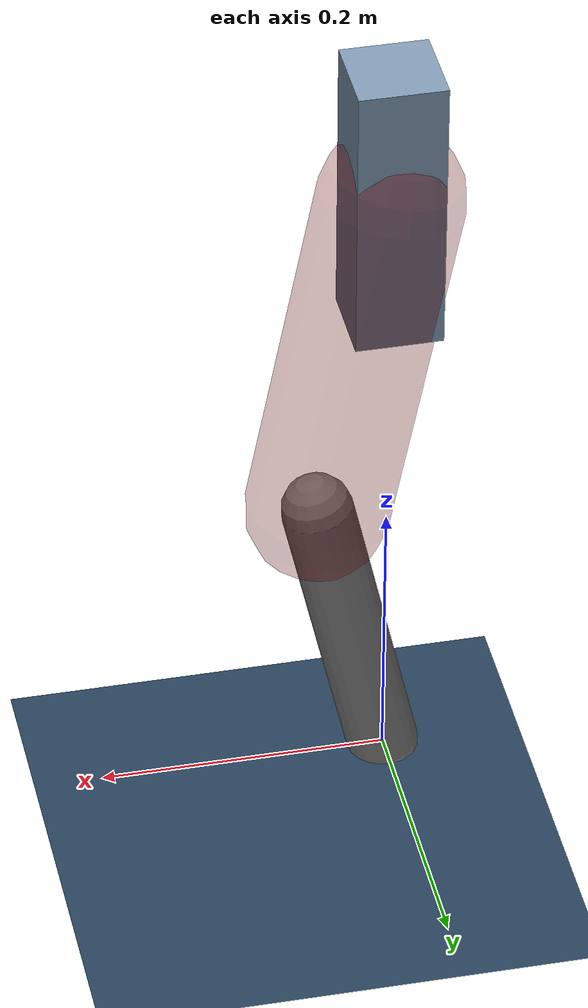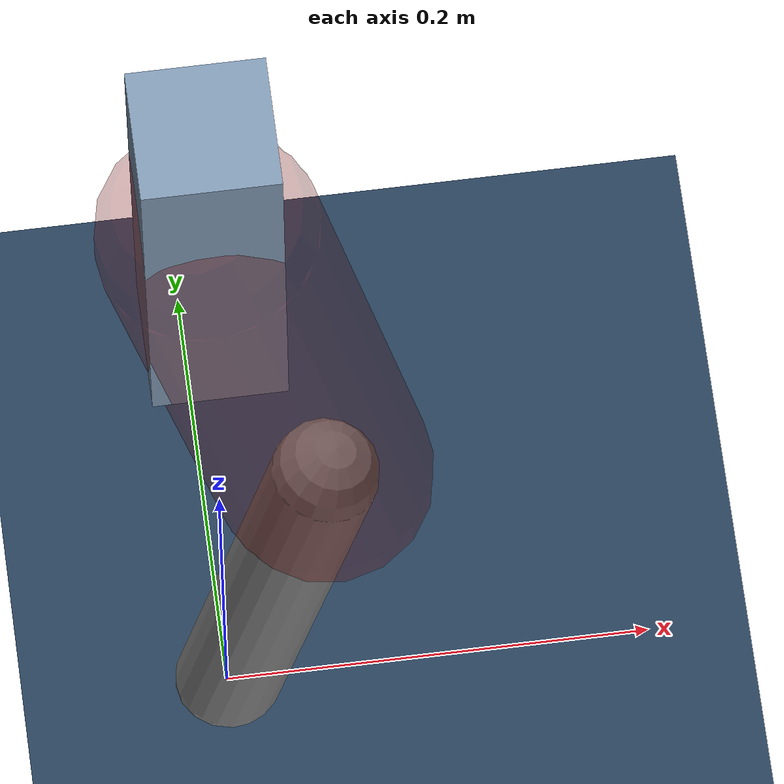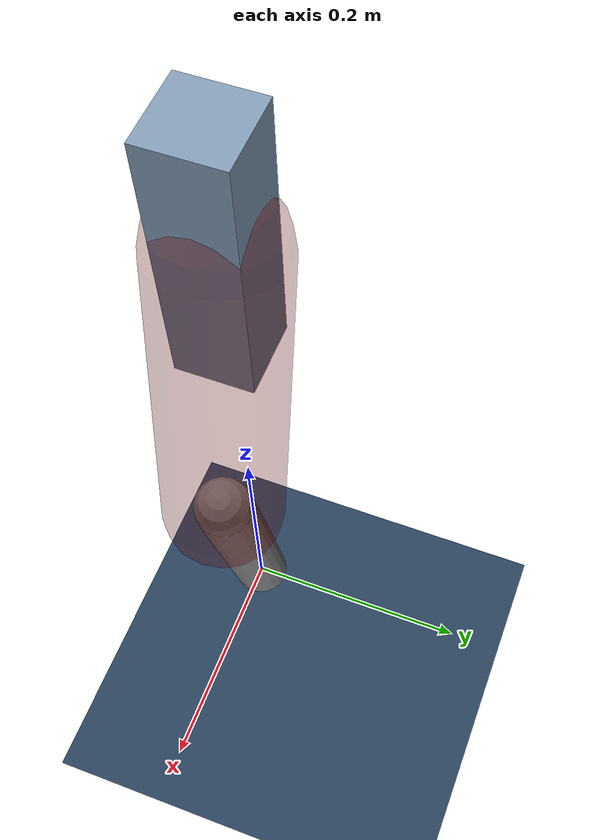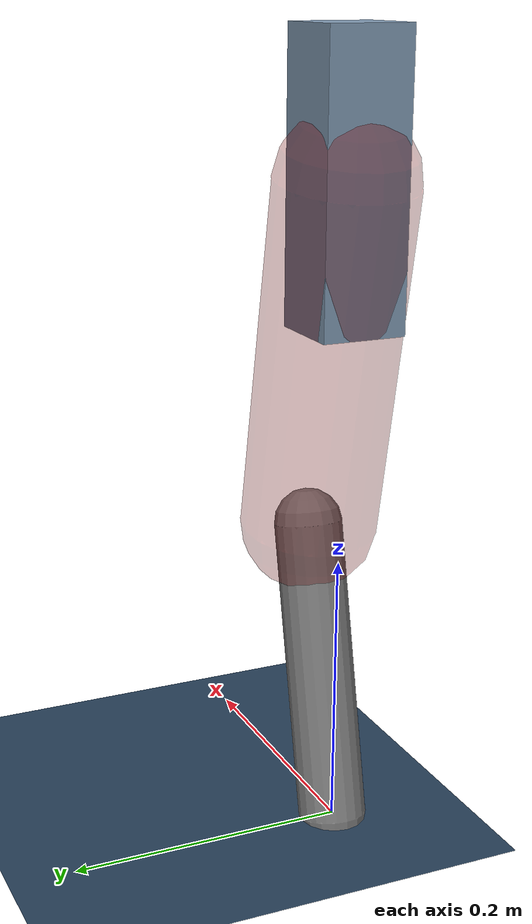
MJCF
<mujoco model="Hopper2D">
	<compiler inertiafromgeom="true" angle="radian" />
	<option timestep="0.001" integrator="implicit" cone="elliptic" solver="Newton" tolerance="1e-10" />

	<default>
		<geom contype="1" conaffinity="1" condim="3" friction="2 0.005 0.0001" solref="0.005 1" />
		<joint limited="true" damping="0.1" />
	</default>

	<asset>
		<texture name="skybox" type="skybox" builtin="gradient" rgb1=".4 .6 .8" rgb2="0 0 0" width="800" height="800" />
		<texture name="grid" type="2d" builtin="checker" rgb1=".1 .2 .3" rgb2=".2 .3 .4" width="300" height="300" mark="edge" markrgb=".2 .3 .4" />
		<material name="ground" texture="grid" texrepeat="1 1" texuniform="true" reflectance="0.1" />
		<material name="leg" rgba="0.5 0.6 0.7 1" />
	</asset>

	<worldbody>

		<geom name="floor" type="plane" size="5 5 0.25" material="ground" />

		<light directional="false" diffuse="0.8 0.8 0.8" specular="0.3 0.3 0.3" pos="0 0 2" dir="0 0 -1" />
		<light mode="targetbodycom" target="base" directional="false" diffuse="0.8 0.8 0.8" specular="0.3 0.3 0.3" pos="0 0 2" dir="0 0 -1" />

		<camera name="fixed" pos="0 -2 1" xyaxes="1 0 0 0 0 1" />
		<camera name="tracking" mode="trackcom" pos="0 -3 1" />

		<body name="root" pos="0 0 0.4674398551975677">
			<joint name="slide_x" type="slide" axis="1 0 0" range="-100 100" />
			<joint name="slide_z" type="slide" axis="0 0 1" range="0 10" />

			<body name="base" pos="0 0 0">
				<geom name="torso" type="box" size="0.03 0.03 0.1" mass="3.262" material="leg" />

				<body name="link1" pos="0 0 0" euler="0 1.381112561118714 0">
					<joint type="hinge" axis="0 -1 0" pos="0 0 0" name="hinge1" limited="true" range="-3.14 3.14" stiffness="0" damping="0.1" />
					<geom name="thigh" type="capsule" fromto="0 0 0 0.25698364789119393 0 0" size="0.05" rgba="0.5 0 0 0.3" mass="0.8745574845171042" />

					<body name="link2" pos="0.25698364789119393 0 0" euler="0 0.41128190213049187 0">
						<joint type="hinge" axis="0 -1 0" pos="0 0 0" name="hinge2" limited="true" range="-3.14 3.14" stiffness="0" damping="0.1" />
						<geom name="shank" type="capsule" fromto="0 0 0 0.22045620730637377 0 0" size="0.025" mass="0.418064965845099" />

					</body>
				</body>
			</body>
		</body>
	</worldbody>

	<actuator>
		<motor name="torque1" joint="hinge1" ctrlrange="-141.7134560121404 141.7134560121404" ctrllimited="true" gear="1" />
		<motor name="torque2" joint="hinge2" ctrlrange="-47.576104237849606 47.576104237849606" ctrllimited="true" gear="1" />
	</actuator>
</mujoco>
